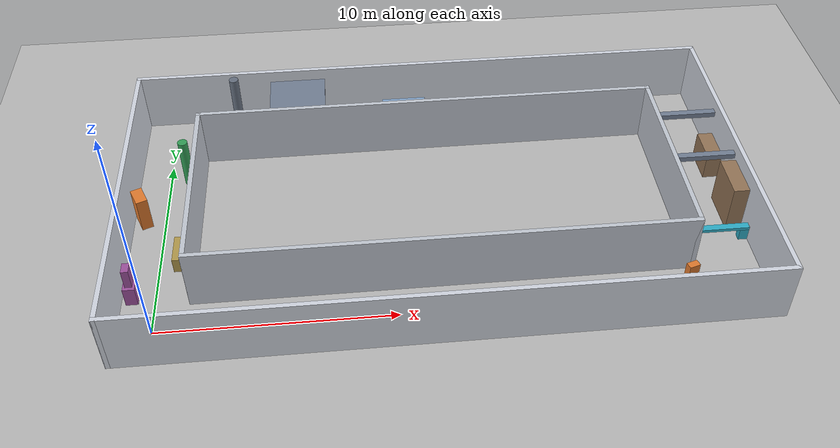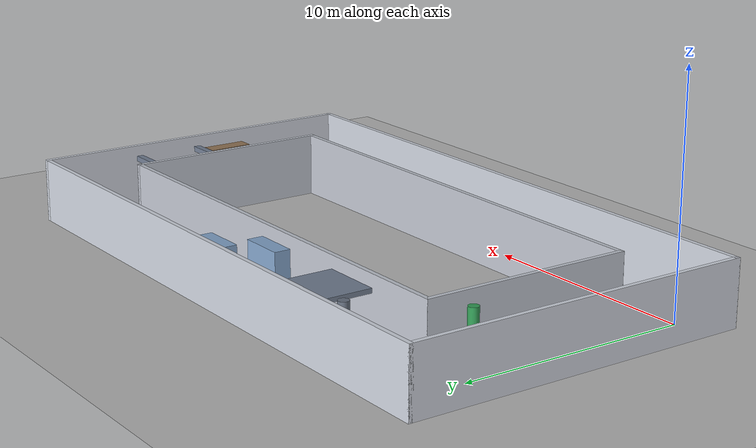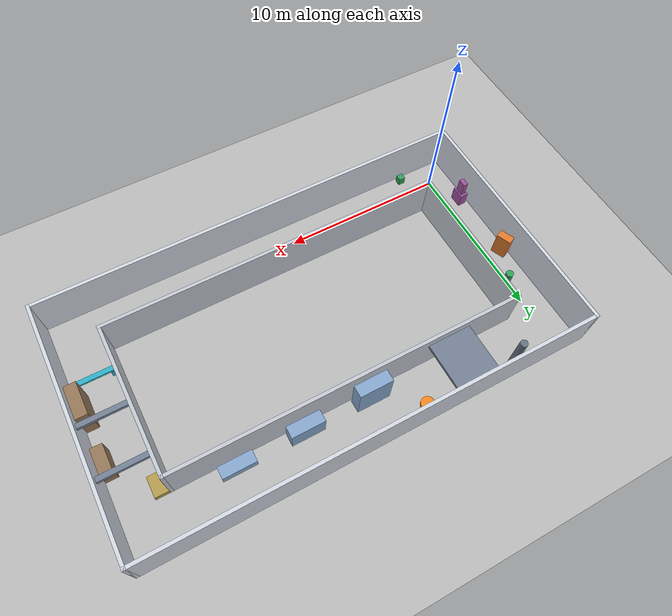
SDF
<?xml version="1.0"?>
<sdf version="1.10">
  <world name="slam_world">
    <physics name="default_physics" type="ode">
      <max_step_size>0.004</max_step_size>
      <real_time_factor>1.0</real_time_factor>
      <real_time_update_rate>250</real_time_update_rate>
    </physics>

    <plugin filename="gz-sim-physics-system" name="gz::sim::systems::Physics"/>
    <plugin filename="gz-sim-user-commands-system" name="gz::sim::systems::UserCommands"/>
    <plugin filename="gz-sim-scene-broadcaster-system" name="gz::sim::systems::SceneBroadcaster"/>
    <plugin filename="gz-sim-imu-system" name="gz::sim::systems::Imu"/>
    <plugin filename="gz-sim-sensors-system" name="gz::sim::systems::Sensors">
      <render_engine>ogre2</render_engine>
    </plugin>

    <gravity>0 0 -9.81</gravity>

    <scene>
      <ambient>0.45 0.45 0.45 1</ambient>
      <background>0.75 0.80 0.85 1</background>
      <shadows>false</shadows>
      <grid>true</grid>
    </scene>

    <light name="sun" type="directional">
      <cast_shadows>false</cast_shadows>
      <pose>12 6 14 0 0 0</pose>
      <diffuse>0.9 0.9 0.9 1</diffuse>
      <specular>0.2 0.2 0.2 1</specular>
      <attenuation>
        <range>1000</range>
        <constant>0.9</constant>
        <linear>0.01</linear>
        <quadratic>0.001</quadratic>
      </attenuation>
      <direction>-0.4 0.2 -1.0</direction>
    </light>

    <model name="ground_plane">
      <static>true</static>
      <link name="ground_link">
        <collision name="ground_collision">
          <geometry>
            <plane>
              <normal>0 0 1</normal>
              <size>70 50</size>
            </plane>
          </geometry>
          <surface>
            <friction>
              <ode><mu>1.0</mu><mu2>1.0</mu2></ode>
            </friction>
          </surface>
        </collision>
        <visual name="ground_visual">
          <geometry>
            <plane>
              <normal>0 0 1</normal>
              <size>70 50</size>
            </plane>
          </geometry>
          <material>
            <ambient>0.64 0.64 0.64 1</ambient>
            <diffuse>0.72 0.72 0.72 1</diffuse>
          </material>
        </visual>
      </link>
    </model>

    <model name="structured_loop">
      <static>true</static>
      <link name="loop_link">

        <!-- Outer shell: x in [-1.5, 25.5], y in [-1.5, 13.5]. -->
        <collision name="outer_south_collision">
          <pose>12.0 -1.5 1.4 0 0 0</pose>
          <geometry><box><size>27.2 0.2 2.8</size></box></geometry>
        </collision>
        <visual name="outer_south_visual">
          <pose>12.0 -1.5 1.4 0 0 0</pose>
          <geometry><box><size>27.2 0.2 2.8</size></box></geometry>
          <material>
            <ambient>0.82 0.84 0.88 1</ambient>
            <diffuse>0.82 0.84 0.88 1</diffuse>
            <pbr><metal>
              <albedo_map>../materials/textures/structured_rgbd_outer_south.png</albedo_map>
              <roughness>0.9</roughness><metalness>0.0</metalness>
            </metal></pbr>
          </material>
        </visual>

        <collision name="outer_north_collision">
          <pose>12.0 13.5 1.4 0 0 0</pose>
          <geometry><box><size>27.2 0.2 2.8</size></box></geometry>
        </collision>
        <visual name="outer_north_visual">
          <pose>12.0 13.5 1.4 0 0 0</pose>
          <geometry><box><size>27.2 0.2 2.8</size></box></geometry>
          <material>
            <ambient>0.82 0.84 0.88 1</ambient>
            <diffuse>0.82 0.84 0.88 1</diffuse>
            <pbr><metal>
              <albedo_map>../materials/textures/structured_rgbd_outer_north.png</albedo_map>
              <roughness>0.9</roughness><metalness>0.0</metalness>
            </metal></pbr>
          </material>
        </visual>

        <collision name="outer_west_collision">
          <pose>-1.5 6.0 1.4 0 0 0</pose>
          <geometry><box><size>0.2 15.2 2.8</size></box></geometry>
        </collision>
        <visual name="outer_west_visual">
          <pose>-1.5 6.0 1.4 0 0 0</pose>
          <geometry><box><size>0.2 15.2 2.8</size></box></geometry>
          <material>
            <ambient>0.82 0.84 0.88 1</ambient>
            <diffuse>0.82 0.84 0.88 1</diffuse>
            <pbr><metal>
              <albedo_map>../materials/textures/structured_rgbd_outer_west.png</albedo_map>
              <roughness>0.9</roughness><metalness>0.0</metalness>
            </metal></pbr>
          </material>
        </visual>

        <collision name="outer_east_collision">
          <pose>25.5 6.0 1.4 0 0 0</pose>
          <geometry><box><size>0.2 15.2 2.8</size></box></geometry>
        </collision>
        <visual name="outer_east_visual">
          <pose>25.5 6.0 1.4 0 0 0</pose>
          <geometry><box><size>0.2 15.2 2.8</size></box></geometry>
          <material>
            <ambient>0.82 0.84 0.88 1</ambient>
            <diffuse>0.82 0.84 0.88 1</diffuse>
            <pbr><metal>
              <albedo_map>../materials/textures/structured_rgbd_outer_east.png</albedo_map>
              <roughness>0.9</roughness><metalness>0.0</metalness>
            </metal></pbr>
          </material>
        </visual>

        <!-- Inner block: x in [1.5, 22.5], y in [1.5, 10.5]. -->
        <collision name="inner_south_collision">
          <pose>12.0 1.5 1.4 0 0 0</pose>
          <geometry><box><size>21.2 0.2 2.8</size></box></geometry>
        </collision>
        <visual name="inner_south_visual">
          <pose>12.0 1.5 1.4 0 0 0</pose>
          <geometry><box><size>21.2 0.2 2.8</size></box></geometry>
          <material>
            <ambient>0.76 0.78 0.82 1</ambient>
            <diffuse>0.76 0.78 0.82 1</diffuse>
            <pbr><metal>
              <albedo_map>../materials/textures/structured_rgbd_inner_south.png</albedo_map>
              <roughness>0.9</roughness><metalness>0.0</metalness>
            </metal></pbr>
          </material>
        </visual>

        <collision name="inner_north_collision">
          <pose>12.0 10.5 1.4 0 0 0</pose>
          <geometry><box><size>21.2 0.2 2.8</size></box></geometry>
        </collision>
        <visual name="inner_north_visual">
          <pose>12.0 10.5 1.4 0 0 0</pose>
          <geometry><box><size>21.2 0.2 2.8</size></box></geometry>
          <material>
            <ambient>0.76 0.78 0.82 1</ambient>
            <diffuse>0.76 0.78 0.82 1</diffuse>
            <pbr><metal>
              <albedo_map>../materials/textures/structured_rgbd_inner_north.png</albedo_map>
              <roughness>0.9</roughness><metalness>0.0</metalness>
            </metal></pbr>
          </material>
        </visual>

        <collision name="inner_west_collision">
          <pose>1.5 6.0 1.4 0 0 0</pose>
          <geometry><box><size>0.2 9.2 2.8</size></box></geometry>
        </collision>
        <visual name="inner_west_visual">
          <pose>1.5 6.0 1.4 0 0 0</pose>
          <geometry><box><size>0.2 9.2 2.8</size></box></geometry>
          <material>
            <ambient>0.76 0.78 0.82 1</ambient>
            <diffuse>0.76 0.78 0.82 1</diffuse>
            <pbr><metal>
              <albedo_map>../materials/textures/structured_rgbd_inner_west.png</albedo_map>
              <roughness>0.9</roughness><metalness>0.0</metalness>
            </metal></pbr>
          </material>
        </visual>

        <collision name="inner_east_collision">
          <pose>22.5 6.0 1.4 0 0 0</pose>
          <geometry><box><size>0.2 9.2 2.8</size></box></geometry>
        </collision>
        <visual name="inner_east_visual">
          <pose>22.5 6.0 1.4 0 0 0</pose>
          <geometry><box><size>0.2 9.2 2.8</size></box></geometry>
          <material>
            <ambient>0.76 0.78 0.82 1</ambient>
            <diffuse>0.76 0.78 0.82 1</diffuse>
            <pbr><metal>
              <albedo_map>../materials/textures/structured_rgbd_inner_east.png</albedo_map>
              <roughness>0.9</roughness><metalness>0.0</metalness>
            </metal></pbr>
          </material>
        </visual>

        <collision name="south_entry_marker_collision">
          <pose>1.6 -1.05 0.25 0 0 0</pose>
          <geometry><box><size>0.4 0.4 0.5</size></box></geometry>
        </collision>
        <visual name="south_entry_marker_visual">
          <pose>1.6 -1.05 0.25 0 0 0</pose>
          <geometry><box><size>0.4 0.4 0.5</size></box></geometry>
          <material>
            <ambient>0.20 0.62 0.34 1</ambient>
            <diffuse>0.20 0.62 0.34 1</diffuse>
          </material>
        </visual>

        <collision name="south_exit_marker_collision">
          <pose>22.4 1.05 0.30 0 0 0.30</pose>
          <geometry><box><size>0.5 0.3 0.6</size></box></geometry>
        </collision>
        <visual name="south_exit_marker_visual">
          <pose>22.4 1.05 0.30 0 0 0.30</pose>
          <geometry><box><size>0.5 0.3 0.6</size></box></geometry>
          <material>
            <ambient>0.88 0.48 0.18 1</ambient>
            <diffuse>0.88 0.48 0.18 1</diffuse>
          </material>
        </visual>

        <collision name="east_clearance_portal_header_collision">
          <pose>24.0 3.0 0.625 0 0 0</pose>
          <geometry><box><size>2.8 0.30 0.15</size></box></geometry>
        </collision>
        <visual name="east_clearance_portal_header_visual">
          <pose>24.0 3.0 0.625 0 0 0</pose>
          <geometry><box><size>2.8 0.30 0.15</size></box></geometry>
          <material>
            <ambient>0.18 0.68 0.78 1</ambient>
            <diffuse>0.18 0.68 0.78 1</diffuse>
          </material>
        </visual>

        <collision name="east_clearance_portal_inner_jamb_collision">
          <pose>22.80 3.0 0.275 0 0 0</pose>
          <geometry><box><size>0.40 0.30 0.55</size></box></geometry>
        </collision>
        <visual name="east_clearance_portal_inner_jamb_visual">
          <pose>22.80 3.0 0.275 0 0 0</pose>
          <geometry><box><size>0.40 0.30 0.55</size></box></geometry>
          <material>
            <ambient>0.18 0.68 0.78 1</ambient>
            <diffuse>0.18 0.68 0.78 1</diffuse>
          </material>
        </visual>

        <collision name="east_clearance_portal_outer_jamb_collision">
          <pose>25.20 3.0 0.275 0 0 0</pose>
          <geometry><box><size>0.40 0.30 0.55</size></box></geometry>
        </collision>
        <visual name="east_clearance_portal_outer_jamb_visual">
          <pose>25.20 3.0 0.275 0 0 0</pose>
          <geometry><box><size>0.40 0.30 0.55</size></box></geometry>
          <material>
            <ambient>0.18 0.68 0.78 1</ambient>
            <diffuse>0.18 0.68 0.78 1</diffuse>
          </material>
        </visual>

        <collision name="east_gantry_b_collision">
          <pose>24.0 6.0 2.20 0 0 0</pose>
          <geometry><box><size>2.8 0.30 0.24</size></box></geometry>
        </collision>
        <visual name="east_gantry_b_visual">
          <pose>24.0 6.0 2.20 0 0 0</pose>
          <geometry><box><size>2.8 0.30 0.24</size></box></geometry>
          <material>
            <ambient>0.45 0.50 0.58 1</ambient>
            <diffuse>0.45 0.50 0.58 1</diffuse>
          </material>
        </visual>

        <collision name="east_gantry_c_collision">
          <pose>24.0 9.0 2.20 0 0 0</pose>
          <geometry><box><size>2.8 0.30 0.24</size></box></geometry>
        </collision>
        <visual name="east_gantry_c_visual">
          <pose>24.0 9.0 2.20 0 0 0</pose>
          <geometry><box><size>2.8 0.30 0.24</size></box></geometry>
          <material>
            <ambient>0.45 0.50 0.58 1</ambient>
            <diffuse>0.45 0.50 0.58 1</diffuse>
          </material>
        </visual>

        <collision name="east_tall_shelf_collision">
          <pose>25.0 4.6 1.10 0 0 0</pose>
          <geometry><box><size>0.7 2.0 2.2</size></box></geometry>
        </collision>
        <visual name="east_tall_shelf_visual">
          <pose>25.0 4.6 1.10 0 0 0</pose>
          <geometry><box><size>0.7 2.0 2.2</size></box></geometry>
          <material>
            <ambient>0.58 0.46 0.34 1</ambient>
            <diffuse>0.58 0.46 0.34 1</diffuse>
          </material>
        </visual>

        <collision name="east_mid_shelf_collision">
          <pose>25.0 7.8 0.65 0 0 0</pose>
          <geometry><box><size>0.7 1.6 1.3</size></box></geometry>
        </collision>
        <visual name="east_mid_shelf_visual">
          <pose>25.0 7.8 0.65 0 0 0</pose>
          <geometry><box><size>0.7 1.6 1.3</size></box></geometry>
          <material>
            <ambient>0.58 0.46 0.34 1</ambient>
            <diffuse>0.58 0.46 0.34 1</diffuse>
          </material>
        </visual>

        <collision name="east_low_pallet_collision">
          <pose>23.0 10.0 0.20 0 0 0</pose>
          <geometry><box><size>0.8 1.2 0.4</size></box></geometry>
        </collision>
        <visual name="east_low_pallet_visual">
          <pose>23.0 10.0 0.20 0 0 0</pose>
          <geometry><box><size>0.8 1.2 0.4</size></box></geometry>
          <material>
            <ambient>0.70 0.60 0.30 1</ambient>
            <diffuse>0.70 0.60 0.30 1</diffuse>
          </material>
        </visual>

        <collision name="north_step_low_collision">
          <pose>19.0 11.05 0.30 0 0 0</pose>
          <geometry><box><size>2.0 0.7 0.6</size></box></geometry>
        </collision>
        <visual name="north_step_low_visual">
          <pose>19.0 11.05 0.30 0 0 0</pose>
          <geometry><box><size>2.0 0.7 0.6</size></box></geometry>
          <material>
            <ambient>0.52 0.65 0.80 1</ambient>
            <diffuse>0.52 0.65 0.80 1</diffuse>
          </material>
        </visual>

        <collision name="north_step_mid_collision">
          <pose>15.0 11.05 0.70 0 0 0</pose>
          <geometry><box><size>2.0 0.7 1.4</size></box></geometry>
        </collision>
        <visual name="north_step_mid_visual">
          <pose>15.0 11.05 0.70 0 0 0</pose>
          <geometry><box><size>2.0 0.7 1.4</size></box></geometry>
          <material>
            <ambient>0.52 0.65 0.80 1</ambient>
            <diffuse>0.52 0.65 0.80 1</diffuse>
          </material>
        </visual>

        <collision name="north_step_high_collision">
          <pose>11.0 11.05 1.15 0 0 0</pose>
          <geometry><box><size>2.0 0.7 2.3</size></box></geometry>
        </collision>
        <visual name="north_step_high_visual">
          <pose>11.0 11.05 1.15 0 0 0</pose>
          <geometry><box><size>2.0 0.7 2.3</size></box></geometry>
          <material>
            <ambient>0.52 0.65 0.80 1</ambient>
            <diffuse>0.52 0.65 0.80 1</diffuse>
          </material>
        </visual>

        <collision name="north_canopy_collision">
          <pose>6.0 12.0 2.15 0 0 0</pose>
          <geometry><box><size>2.6 2.8 0.20</size></box></geometry>
        </collision>
        <visual name="north_canopy_visual">
          <pose>6.0 12.0 2.15 0 0 0</pose>
          <geometry><box><size>2.6 2.8 0.20</size></box></geometry>
          <material>
            <ambient>0.45 0.50 0.58 1</ambient>
            <diffuse>0.45 0.50 0.58 1</diffuse>
          </material>
        </visual>

        <collision name="north_column_collision">
          <pose>3.0 13.0 1.40 0 0 0</pose>
          <geometry><cylinder><radius>0.22</radius><length>2.8</length></cylinder></geometry>
        </collision>
        <visual name="north_column_visual">
          <pose>3.0 13.0 1.40 0 0 0</pose>
          <geometry><cylinder><radius>0.22</radius><length>2.8</length></cylinder></geometry>
          <material>
            <ambient>0.40 0.44 0.50 1</ambient>
            <diffuse>0.40 0.44 0.50 1</diffuse>
          </material>
        </visual>

        <collision name="north_mushroom_stem_collision">
          <pose>8.5 12.85 0.09 0 0 0</pose>
          <geometry><cylinder><radius>0.07</radius><length>0.18</length></cylinder></geometry>
        </collision>
        <visual name="north_mushroom_stem_visual">
          <pose>8.5 12.85 0.09 0 0 0</pose>
          <geometry><cylinder><radius>0.07</radius><length>0.18</length></cylinder></geometry>
          <material>
            <ambient>0.86 0.24 0.18 1</ambient>
            <diffuse>0.86 0.24 0.18 1</diffuse>
          </material>
        </visual>

        <collision name="north_mushroom_cap_collision">
          <pose>8.5 12.85 0.31 0 0 0</pose>
          <geometry><cylinder><radius>0.40</radius><length>0.26</length></cylinder></geometry>
        </collision>
        <visual name="north_mushroom_cap_visual">
          <pose>8.5 12.85 0.31 0 0 0</pose>
          <geometry><cylinder><radius>0.40</radius><length>0.26</length></cylinder></geometry>
          <material>
            <ambient>0.96 0.52 0.12 1</ambient>
            <diffuse>0.96 0.52 0.12 1</diffuse>
          </material>
        </visual>

        <collision name="west_pillar_collision">
          <pose>0.85 9.0 1.20 0 0 0</pose>
          <geometry><cylinder><radius>0.22</radius><length>2.4</length></cylinder></geometry>
        </collision>
        <visual name="west_pillar_visual">
          <pose>0.85 9.0 1.20 0 0 0</pose>
          <geometry><cylinder><radius>0.22</radius><length>2.4</length></cylinder></geometry>
          <material>
            <ambient>0.20 0.62 0.34 1</ambient>
            <diffuse>0.20 0.62 0.34 1</diffuse>
          </material>
        </visual>

        <collision name="west_angled_block_collision">
          <pose>-0.95 6.5 0.80 0 0 0.40</pose>
          <geometry><box><size>0.5 0.9 1.6</size></box></geometry>
        </collision>
        <visual name="west_angled_block_visual">
          <pose>-0.95 6.5 0.80 0 0 0.40</pose>
          <geometry><box><size>0.5 0.9 1.6</size></box></geometry>
          <material>
            <ambient>0.88 0.48 0.18 1</ambient>
            <diffuse>0.88 0.48 0.18 1</diffuse>
          </material>
        </visual>

        <collision name="west_wide_block_collision">
          <pose>0.90 4.0 0.35 0 0 0</pose>
          <geometry><box><size>0.6 1.4 0.7</size></box></geometry>
        </collision>
        <visual name="west_wide_block_visual">
          <pose>0.90 4.0 0.35 0 0 0</pose>
          <geometry><box><size>0.6 1.4 0.7</size></box></geometry>
          <material>
            <ambient>0.70 0.60 0.30 1</ambient>
            <diffuse>0.70 0.60 0.30 1</diffuse>
          </material>
        </visual>

        <collision name="west_tower_base_collision">
          <pose>-0.95 2.0 0.45 0 0 0</pose>
          <geometry><box><size>0.5 0.8 0.9</size></box></geometry>
        </collision>
        <visual name="west_tower_base_visual">
          <pose>-0.95 2.0 0.45 0 0 0</pose>
          <geometry><box><size>0.5 0.8 0.9</size></box></geometry>
          <material>
            <ambient>0.62 0.32 0.62 1</ambient>
            <diffuse>0.62 0.32 0.62 1</diffuse>
          </material>
        </visual>

        <collision name="west_tower_top_collision">
          <pose>-0.95 2.0 1.35 0 0 0</pose>
          <geometry><box><size>0.3 0.5 0.9</size></box></geometry>
        </collision>
        <visual name="west_tower_top_visual">
          <pose>-0.95 2.0 1.35 0 0 0</pose>
          <geometry><box><size>0.3 0.5 0.9</size></box></geometry>
          <material>
            <ambient>0.62 0.32 0.62 1</ambient>
            <diffuse>0.62 0.32 0.62 1</diffuse>
          </material>
        </visual>
      </link>
    </model>

    <gui fullscreen="false">
      <plugin filename="MinimalScene" name="3D View">
        <gz-gui>
          <title>3D View</title>
          <property key="showTitleBar" type="bool">false</property>
          <property key="state" type="string">docked</property>
        </gz-gui>
        <engine>ogre2</engine>
        <scene>scene</scene>
        <ambient_light>0.4 0.4 0.4</ambient_light>
        <background_color>0.75 0.80 0.85</background_color>
        <camera_pose>12 -14 18 0 0.75 1.30</camera_pose>
        <camera_clip><near>0.10</near><far>1000</far></camera_clip>
      </plugin>
      <plugin filename="GzSceneManager" name="Scene Manager">
        <gz-gui>
          <property key="resizable" type="bool">false</property>
          <property key="width" type="double">5</property>
          <property key="height" type="double">5</property>
          <property key="state" type="string">floating</property>
          <property key="showTitleBar" type="bool">false</property>
        </gz-gui>
      </plugin>
      <plugin filename="InteractiveViewControl" name="Interactive view control">
        <gz-gui>
          <property key="resizable" type="bool">false</property>
          <property key="width" type="double">5</property>
          <property key="height" type="double">5</property>
          <property key="state" type="string">floating</property>
          <property key="showTitleBar" type="bool">false</property>
        </gz-gui>
      </plugin>
      <plugin filename="CameraTracking" name="Camera Tracking">
        <gz-gui>
          <property key="resizable" type="bool">false</property>
          <property key="width" type="double">5</property>
          <property key="height" type="double">5</property>
          <property key="state" type="string">floating</property>
          <property key="showTitleBar" type="bool">false</property>
        </gz-gui>
      </plugin>
      <plugin filename="WorldControl" name="World control">
        <gz-gui>
          <title>World control</title>
          <property key="showTitleBar" type="bool">false</property>
          <property key="state" type="string">docked</property>
        </gz-gui>
        <play_pause>true</play_pause>
        <step>true</step>
        <start_paused>false</start_paused>
      </plugin>
    </gui>
  </world>
</sdf>
